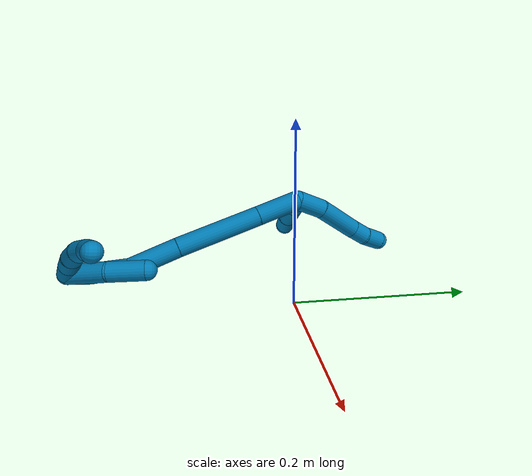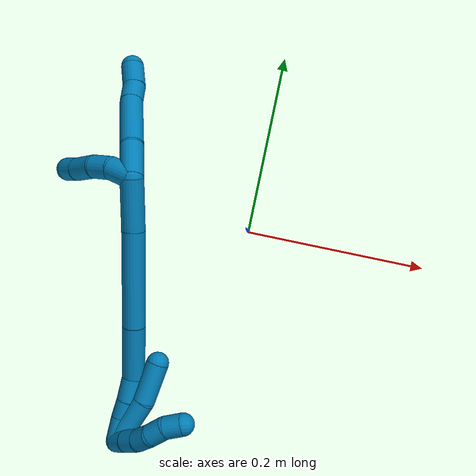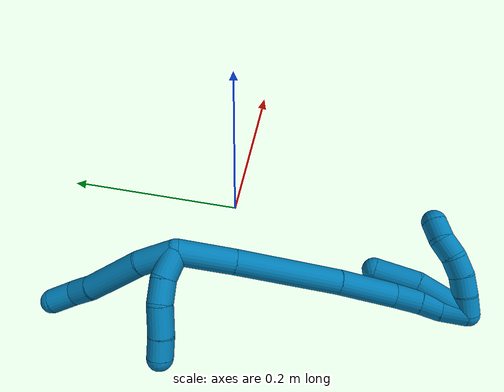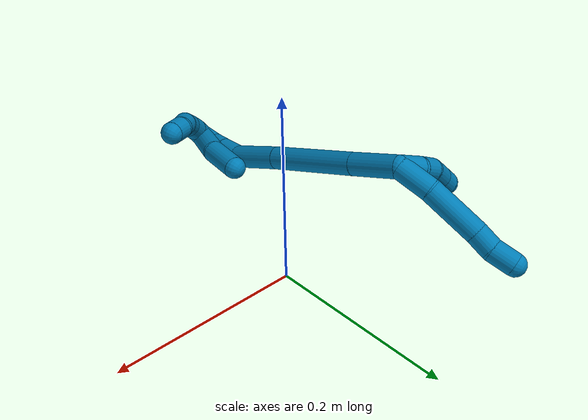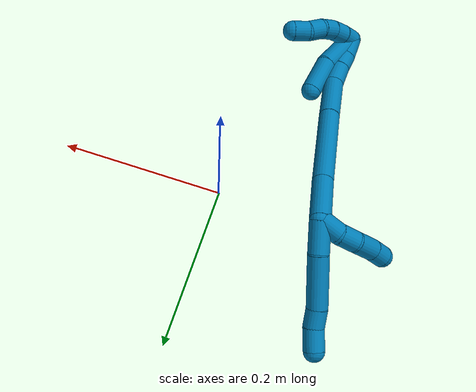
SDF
<sdf version="1.7">
 <world name="default">
  <model name="9">
   <static>0</static>
   <link name="9">
    <collision name="collision-cylinder-e_1_2_8">
     <pose>0.00286 -0.003937 -0.018699 2.9341 0.148581 1.2412</pose>
     <geometry><cylinder><radius>0.0125</radius><length>0.038644</length></cylinder></geometry>
     <surface>
      <friction><ode><mu>1.16</mu><mu2>1.16</mu2><slip1>0</slip1><slip2>0</slip2></ode></friction>
      <contact><ode><kp>1e+06</kp><kd>1</kd><max_vel>0</max_vel><min_depth>0.001</min_depth></ode></contact>
     </surface>
    </collision>
    <visual name="visual-cylinder-e_1_2_8">
     <pose>0.00286 -0.003937 -0.018699 2.9341 0.148581 1.2412</pose>
     <geometry><cylinder><radius>0.0125</radius><length>0.038644</length></cylinder></geometry>
     <material><ambient>0 0.490196 0.709804 1</ambient></material>
    </visual>
    <collision name="collision-cylinder-e_2_8_9">
     <pose>0.012709 -0.019048 -0.065464 2.76267 0.227326 1.0739</pose>
     <geometry><cylinder><radius>0.0125</radius><length>0.062013</length></cylinder></geometry>
     <surface>
      <friction><ode><mu>1.16</mu><mu2>1.16</mu2><slip1>0</slip1><slip2>0</slip2></ode></friction>
      <contact><ode><kp>1e+06</kp><kd>1</kd><max_vel>0</max_vel><min_depth>0.001</min_depth></ode></contact>
     </surface>
    </collision>
    <visual name="visual-cylinder-e_2_8_9">
     <pose>0.012709 -0.019048 -0.065464 2.76267 0.227326 1.0739</pose>
     <geometry><cylinder><radius>0.0125</radius><length>0.062013</length></cylinder></geometry>
     <material><ambient>0 0.490196 0.709804 1</ambient></material>
    </visual>
    <collision name="collision-cylinder-e_3_9_10">
     <pose>0.023365 -0.032944 -0.103829 2.88332 0.331654 1.82183</pose>
     <geometry><cylinder><radius>0.0125</radius><length>0.022534</length></cylinder></geometry>
     <surface>
      <friction><ode><mu>1.16</mu><mu2>1.16</mu2><slip1>0</slip1><slip2>0</slip2></ode></friction>
      <contact><ode><kp>1e+06</kp><kd>1</kd><max_vel>0</max_vel><min_depth>0.001</min_depth></ode></contact>
     </surface>
    </collision>
    <visual name="visual-cylinder-e_3_9_10">
     <pose>0.023365 -0.032944 -0.103829 2.88332 0.331654 1.82183</pose>
     <geometry><cylinder><radius>0.0125</radius><length>0.022534</length></cylinder></geometry>
     <material><ambient>0 0.490196 0.709804 1</ambient></material>
    </visual>
    <collision name="collision-cylinder-e_4_10_6">
     <pose>0.028233 -0.038914 -0.127078 2.89573 0.089563 0.69587</pose>
     <geometry><cylinder><radius>0.0125</radius><length>0.02681</length></cylinder></geometry>
     <surface>
      <friction><ode><mu>1.16</mu><mu2>1.16</mu2><slip1>0</slip1><slip2>0</slip2></ode></friction>
      <contact><ode><kp>1e+06</kp><kd>1</kd><max_vel>0</max_vel><min_depth>0.001</min_depth></ode></contact>
     </surface>
    </collision>
    <visual name="visual-cylinder-e_4_10_6">
     <pose>0.028233 -0.038914 -0.127078 2.89573 0.089563 0.69587</pose>
     <geometry><cylinder><radius>0.0125</radius><length>0.02681</length></cylinder></geometry>
     <material><ambient>0 0.490196 0.709804 1</ambient></material>
    </visual>
    <collision name="collision-cylinder-e_1_2_11">
     <pose>-0.006217 -0.010048 -0.006543 2.14799 -0.478379 -0.845364</pose>
     <geometry><cylinder><radius>0.0125</radius><length>0.027013</length></cylinder></geometry>
     <surface>
      <friction><ode><mu>1.16</mu><mu2>1.16</mu2><slip1>0</slip1><slip2>0</slip2></ode></friction>
      <contact><ode><kp>1e+06</kp><kd>1</kd><max_vel>0</max_vel><min_depth>0.001</min_depth></ode></contact>
     </surface>
    </collision>
    <visual name="visual-cylinder-e_1_2_11">
     <pose>-0.006217 -0.010048 -0.006543 2.14799 -0.478379 -0.845364</pose>
     <geometry><cylinder><radius>0.0125</radius><length>0.027013</length></cylinder></geometry>
     <material><ambient>0 0.490196 0.709804 1</ambient></material>
    </visual>
    <collision name="collision-cylinder-e_2_11_12">
     <pose>-0.016713 -0.030397 -0.015808 1.82915 -0.381802 -0.491759</pose>
     <geometry><cylinder><radius>0.0125</radius><length>0.022963</length></cylinder></geometry>
     <surface>
      <friction><ode><mu>1.16</mu><mu2>1.16</mu2><slip1>0</slip1><slip2>0</slip2></ode></friction>
      <contact><ode><kp>1e+06</kp><kd>1</kd><max_vel>0</max_vel><min_depth>0.001</min_depth></ode></contact>
     </surface>
    </collision>
    <visual name="visual-cylinder-e_2_11_12">
     <pose>-0.016713 -0.030397 -0.015808 1.82915 -0.381802 -0.491759</pose>
     <geometry><cylinder><radius>0.0125</radius><length>0.022963</length></cylinder></geometry>
     <material><ambient>0 0.490196 0.709804 1</ambient></material>
    </visual>
    <collision name="collision-cylinder-e_3_12_13">
     <pose>-0.022913 -0.055314 -0.020233 1.68677 -0.129878 -0.145833</pose>
     <geometry><cylinder><radius>0.0125</radius><length>0.02968</length></cylinder></geometry>
     <surface>
      <friction><ode><mu>1.16</mu><mu2>1.16</mu2><slip1>0</slip1><slip2>0</slip2></ode></friction>
      <contact><ode><kp>1e+06</kp><kd>1</kd><max_vel>0</max_vel><min_depth>0.001</min_depth></ode></contact>
     </surface>
    </collision>
    <visual name="visual-cylinder-e_3_12_13">
     <pose>-0.022913 -0.055314 -0.020233 1.68677 -0.129878 -0.145833</pose>
     <geometry><cylinder><radius>0.0125</radius><length>0.02968</length></cylinder></geometry>
     <material><ambient>0 0.490196 0.709804 1</ambient></material>
    </visual>
    <collision name="collision-cylinder-e_4_13_5">
     <pose>-0.025786 -0.079816 -0.024134 1.78966 -0.093676 -0.116755</pose>
     <geometry><cylinder><radius>0.0125</radius><length>0.020344</length></cylinder></geometry>
     <surface>
      <friction><ode><mu>1.16</mu><mu2>1.16</mu2><slip1>0</slip1><slip2>0</slip2></ode></friction>
      <contact><ode><kp>1e+06</kp><kd>1</kd><max_vel>0</max_vel><min_depth>0.001</min_depth></ode></contact>
     </surface>
    </collision>
    <visual name="visual-cylinder-e_4_13_5">
     <pose>-0.025786 -0.079816 -0.024134 1.78966 -0.093676 -0.116755</pose>
     <geometry><cylinder><radius>0.0125</radius><length>0.020344</length></cylinder></geometry>
     <material><ambient>0 0.490196 0.709804 1</ambient></material>
    </visual>
    <collision name="collision-cylinder-e_1_2_14">
     <pose>0.006421 -0.010565 0.025433 0.393702 0.229078 0.045879</pose>
     <geometry><cylinder><radius>0.0125</radius><length>0.056557</length></cylinder></geometry>
     <surface>
      <friction><ode><mu>1.16</mu><mu2>1.16</mu2><slip1>0</slip1><slip2>0</slip2></ode></friction>
      <contact><ode><kp>1e+06</kp><kd>1</kd><max_vel>0</max_vel><min_depth>0.001</min_depth></ode></contact>
     </surface>
    </collision>
    <visual name="visual-cylinder-e_1_2_14">
     <pose>0.006421 -0.010565 0.025433 0.393702 0.229078 0.045879</pose>
     <geometry><cylinder><radius>0.0125</radius><length>0.056557</length></cylinder></geometry>
     <material><ambient>0 0.490196 0.709804 1</ambient></material>
    </visual>
    <collision name="collision-cylinder-e_2_14_15">
     <pose>0.024019 -0.042024 0.098949 0.409943 0.210031 0.043818</pose>
     <geometry><cylinder><radius>0.0125</radius><length>0.10721</length></cylinder></geometry>
     <surface>
      <friction><ode><mu>1.16</mu><mu2>1.16</mu2><slip1>0</slip1><slip2>0</slip2></ode></friction>
      <contact><ode><kp>1e+06</kp><kd>1</kd><max_vel>0</max_vel><min_depth>0.001</min_depth></ode></contact>
     </surface>
    </collision>
    <visual name="visual-cylinder-e_2_14_15">
     <pose>0.024019 -0.042024 0.098949 0.409943 0.210031 0.043818</pose>
     <geometry><cylinder><radius>0.0125</radius><length>0.10721</length></cylinder></geometry>
     <material><ambient>0 0.490196 0.709804 1</ambient></material>
    </visual>
    <collision name="collision-cylinder-e_3_15_16">
     <pose>0.041995 -0.076279 0.174157 0.457646 0.221216 0.051721</pose>
     <geometry><cylinder><radius>0.0125</radius><length>0.061982</length></cylinder></geometry>
     <surface>
      <friction><ode><mu>1.16</mu><mu2>1.16</mu2><slip1>0</slip1><slip2>0</slip2></ode></friction>
      <contact><ode><kp>1e+06</kp><kd>1</kd><max_vel>0</max_vel><min_depth>0.001</min_depth></ode></contact>
     </surface>
    </collision>
    <visual name="visual-cylinder-e_3_15_16">
     <pose>0.041995 -0.076279 0.174157 0.457646 0.221216 0.051721</pose>
     <geometry><cylinder><radius>0.0125</radius><length>0.061982</length></cylinder></geometry>
     <material><ambient>0 0.490196 0.709804 1</ambient></material>
    </visual>
    <collision name="collision-cylinder-e_4_16_17">
     <pose>0.047839 -0.09466 0.213881 0.37929 -0.070358 -0.013511</pose>
     <geometry><cylinder><radius>0.0125</radius><length>0.027194</length></cylinder></geometry>
     <surface>
      <friction><ode><mu>1.16</mu><mu2>1.16</mu2><slip1>0</slip1><slip2>0</slip2></ode></friction>
      <contact><ode><kp>1e+06</kp><kd>1</kd><max_vel>0</max_vel><min_depth>0.001</min_depth></ode></contact>
     </surface>
    </collision>
    <visual name="visual-cylinder-e_4_16_17">
     <pose>0.047839 -0.09466 0.213881 0.37929 -0.070358 -0.013511</pose>
     <geometry><cylinder><radius>0.0125</radius><length>0.027194</length></cylinder></geometry>
     <material><ambient>0 0.490196 0.709804 1</ambient></material>
    </visual>
    <collision name="collision-cylinder-e_5_17_18">
     <pose>0.045883 -0.104282 0.235781 0.45928 -0.096169 -0.022497</pose>
     <geometry><cylinder><radius>0.0125</radius><length>0.020849</length></cylinder></geometry>
     <surface>
      <friction><ode><mu>1.16</mu><mu2>1.16</mu2><slip1>0</slip1><slip2>0</slip2></ode></friction>
      <contact><ode><kp>1e+06</kp><kd>1</kd><max_vel>0</max_vel><min_depth>0.001</min_depth></ode></contact>
     </surface>
    </collision>
    <visual name="visual-cylinder-e_5_17_18">
     <pose>0.045883 -0.104282 0.235781 0.45928 -0.096169 -0.022497</pose>
     <geometry><cylinder><radius>0.0125</radius><length>0.020849</length></cylinder></geometry>
     <material><ambient>0 0.490196 0.709804 1</ambient></material>
    </visual>
    <collision name="collision-cylinder-e_6_18_1">
     <pose>0.04306 -0.11232 0.257595 0.268133 -0.139474 -0.018842</pose>
     <geometry><cylinder><radius>0.0125</radius><length>0.026207</length></cylinder></geometry>
     <surface>
      <friction><ode><mu>1.16</mu><mu2>1.16</mu2><slip1>0</slip1><slip2>0</slip2></ode></friction>
      <contact><ode><kp>1e+06</kp><kd>1</kd><max_vel>0</max_vel><min_depth>0.001</min_depth></ode></contact>
     </surface>
    </collision>
    <visual name="visual-cylinder-e_6_18_1">
     <pose>0.04306 -0.11232 0.257595 0.268133 -0.139474 -0.018842</pose>
     <geometry><cylinder><radius>0.0125</radius><length>0.026207</length></cylinder></geometry>
     <material><ambient>0 0.490196 0.709804 1</ambient></material>
    </visual>
    <collision name="collision-cylinder-e_1_1_19">
     <pose>0.041566 -0.105763 0.270023 -1.57927 0.032768 -0.033047</pose>
     <geometry><cylinder><radius>0.0125</radius><length>0.02</length></cylinder></geometry>
     <surface>
      <friction><ode><mu>1.16</mu><mu2>1.16</mu2><slip1>0</slip1><slip2>0</slip2></ode></friction>
      <contact><ode><kp>1e+06</kp><kd>1</kd><max_vel>0</max_vel><min_depth>0.001</min_depth></ode></contact>
     </surface>
    </collision>
    <visual name="visual-cylinder-e_1_1_19">
     <pose>0.041566 -0.105763 0.270023 -1.57927 0.032768 -0.033047</pose>
     <geometry><cylinder><radius>0.0125</radius><length>0.02</length></cylinder></geometry>
     <material><ambient>0 0.490196 0.709804 1</ambient></material>
    </visual>
    <collision name="collision-cylinder-e_2_19_20">
     <pose>0.043252 -0.085874 0.269448 -1.62033 0.136248 -0.143146</pose>
     <geometry><cylinder><radius>0.0125</radius><length>0.02</length></cylinder></geometry>
     <surface>
      <friction><ode><mu>1.16</mu><mu2>1.16</mu2><slip1>0</slip1><slip2>0</slip2></ode></friction>
      <contact><ode><kp>1e+06</kp><kd>1</kd><max_vel>0</max_vel><min_depth>0.001</min_depth></ode></contact>
     </surface>
    </collision>
    <visual name="visual-cylinder-e_2_19_20">
     <pose>0.043252 -0.085874 0.269448 -1.62033 0.136248 -0.143146</pose>
     <geometry><cylinder><radius>0.0125</radius><length>0.02</length></cylinder></geometry>
     <material><ambient>0 0.490196 0.709804 1</ambient></material>
    </visual>
    <collision name="collision-cylinder-e_3_20_21">
     <pose>0.046311 -0.066457 0.266418 -1.83143 0.170923 -0.222108</pose>
     <geometry><cylinder><radius>0.0125</radius><length>0.02</length></cylinder></geometry>
     <surface>
      <friction><ode><mu>1.16</mu><mu2>1.16</mu2><slip1>0</slip1><slip2>0</slip2></ode></friction>
      <contact><ode><kp>1e+06</kp><kd>1</kd><max_vel>0</max_vel><min_depth>0.001</min_depth></ode></contact>
     </surface>
    </collision>
    <visual name="visual-cylinder-e_3_20_21">
     <pose>0.046311 -0.066457 0.266418 -1.83143 0.170923 -0.222108</pose>
     <geometry><cylinder><radius>0.0125</radius><length>0.02</length></cylinder></geometry>
     <material><ambient>0 0.490196 0.709804 1</ambient></material>
    </visual>
    <collision name="collision-cylinder-e_4_21_22">
     <pose>0.05228 -0.048764 0.260005 -2.01336 0.441018 -0.680969</pose>
     <geometry><cylinder><radius>0.0125</radius><length>0.02</length></cylinder></geometry>
     <surface>
      <friction><ode><mu>1.16</mu><mu2>1.16</mu2><slip1>0</slip1><slip2>0</slip2></ode></friction>
      <contact><ode><kp>1e+06</kp><kd>1</kd><max_vel>0</max_vel><min_depth>0.001</min_depth></ode></contact>
     </surface>
    </collision>
    <visual name="visual-cylinder-e_4_21_22">
     <pose>0.05228 -0.048764 0.260005 -2.01336 0.441018 -0.680969</pose>
     <geometry><cylinder><radius>0.0125</radius><length>0.02</length></cylinder></geometry>
     <material><ambient>0 0.490196 0.709804 1</ambient></material>
    </visual>
    <collision name="collision-cylinder-e_5_22_4">
     <pose>0.062774 -0.032874 0.254836 -1.7373 0.671921 -0.782953</pose>
     <geometry><cylinder><radius>0.0125</radius><length>0.02</length></cylinder></geometry>
     <surface>
      <friction><ode><mu>1.16</mu><mu2>1.16</mu2><slip1>0</slip1><slip2>0</slip2></ode></friction>
      <contact><ode><kp>1e+06</kp><kd>1</kd><max_vel>0</max_vel><min_depth>0.001</min_depth></ode></contact>
     </surface>
    </collision>
    <visual name="visual-cylinder-e_5_22_4">
     <pose>0.062774 -0.032874 0.254836 -1.7373 0.671921 -0.782953</pose>
     <geometry><cylinder><radius>0.0125</radius><length>0.02</length></cylinder></geometry>
     <material><ambient>0 0.490196 0.709804 1</ambient></material>
    </visual>
    <collision name="collision-cylinder-e_1_1_23">
     <pose>0.049234 -0.100017 0.249381 -2.49206 0.298056 -0.838937</pose>
     <geometry><cylinder><radius>0.0125</radius><length>0.054454</length></cylinder></geometry>
     <surface>
      <friction><ode><mu>1.16</mu><mu2>1.16</mu2><slip1>0</slip1><slip2>0</slip2></ode></friction>
      <contact><ode><kp>1e+06</kp><kd>1</kd><max_vel>0</max_vel><min_depth>0.001</min_depth></ode></contact>
     </surface>
    </collision>
    <visual name="visual-cylinder-e_1_1_23">
     <pose>0.049234 -0.100017 0.249381 -2.49206 0.298056 -0.838937</pose>
     <geometry><cylinder><radius>0.0125</radius><length>0.054454</length></cylinder></geometry>
     <material><ambient>0 0.490196 0.709804 1</ambient></material>
    </visual>
    <collision name="collision-cylinder-e_2_23_3">
     <pose>0.061554 -0.075344 0.208157 -2.73066 0.191068 -0.861954</pose>
     <geometry><cylinder><radius>0.0125</radius><length>0.045546</length></cylinder></geometry>
     <surface>
      <friction><ode><mu>1.16</mu><mu2>1.16</mu2><slip1>0</slip1><slip2>0</slip2></ode></friction>
      <contact><ode><kp>1e+06</kp><kd>1</kd><max_vel>0</max_vel><min_depth>0.001</min_depth></ode></contact>
     </surface>
    </collision>
    <visual name="visual-cylinder-e_2_23_3">
     <pose>0.061554 -0.075344 0.208157 -2.73066 0.191068 -0.861954</pose>
     <geometry><cylinder><radius>0.0125</radius><length>0.045546</length></cylinder></geometry>
     <material><ambient>0 0.490196 0.709804 1</ambient></material>
    </visual>
    <collision name="collision-sphere-3">
     <pose>0.065879 -0.066412 0.18766 0 -0 0</pose>
     <geometry><sphere><radius>0.0125</radius></sphere></geometry>
     <surface>
      <friction><ode><mu>1.16</mu><mu2>1.16</mu2><slip1>0</slip1><slip2>0</slip2></ode></friction>
      <contact><ode><kp>1e+06</kp><kd>1</kd><max_vel>0</max_vel><min_depth>0.001</min_depth></ode></contact>
     </surface>
    </collision>
    <visual name="visual-sphere-3">
     <pose>0.065879 -0.066412 0.18766 0 -0 0</pose>
     <geometry><sphere><radius>0.0125</radius></sphere></geometry>
     <material><ambient>0 0.490196 0.709804 1</ambient></material>
    </visual>
    <collision name="collision-sphere-23">
     <pose>0.057229 -0.084275 0.228654 0 -0 0</pose>
     <geometry><sphere><radius>0.0125</radius></sphere></geometry>
     <surface>
      <friction><ode><mu>1.16</mu><mu2>1.16</mu2><slip1>0</slip1><slip2>0</slip2></ode></friction>
      <contact><ode><kp>1e+06</kp><kd>1</kd><max_vel>0</max_vel><min_depth>0.001</min_depth></ode></contact>
     </surface>
    </collision>
    <visual name="visual-sphere-23">
     <pose>0.057229 -0.084275 0.228654 0 -0 0</pose>
     <geometry><sphere><radius>0.0125</radius></sphere></geometry>
     <material><ambient>0 0.490196 0.709804 1</ambient></material>
    </visual>
    <collision name="collision-sphere-4">
     <pose>0.068999 -0.025156 0.253538 0 -0 0</pose>
     <geometry><sphere><radius>0.0125</radius></sphere></geometry>
     <surface>
      <friction><ode><mu>1.16</mu><mu2>1.16</mu2><slip1>0</slip1><slip2>0</slip2></ode></friction>
      <contact><ode><kp>1e+06</kp><kd>1</kd><max_vel>0</max_vel><min_depth>0.001</min_depth></ode></contact>
     </surface>
    </collision>
    <visual name="visual-sphere-4">
     <pose>0.068999 -0.025156 0.253538 0 -0 0</pose>
     <geometry><sphere><radius>0.0125</radius></sphere></geometry>
     <material><ambient>0 0.490196 0.709804 1</ambient></material>
    </visual>
    <collision name="collision-sphere-22">
     <pose>0.056549 -0.040592 0.256133 0 -0 0</pose>
     <geometry><sphere><radius>0.0125</radius></sphere></geometry>
     <surface>
      <friction><ode><mu>1.16</mu><mu2>1.16</mu2><slip1>0</slip1><slip2>0</slip2></ode></friction>
      <contact><ode><kp>1e+06</kp><kd>1</kd><max_vel>0</max_vel><min_depth>0.001</min_depth></ode></contact>
     </surface>
    </collision>
    <visual name="visual-sphere-22">
     <pose>0.056549 -0.040592 0.256133 0 -0 0</pose>
     <geometry><sphere><radius>0.0125</radius></sphere></geometry>
     <material><ambient>0 0.490196 0.709804 1</ambient></material>
    </visual>
    <collision name="collision-sphere-21">
     <pose>0.048012 -0.056936 0.263878 0 -0 0</pose>
     <geometry><sphere><radius>0.0125</radius></sphere></geometry>
     <surface>
      <friction><ode><mu>1.16</mu><mu2>1.16</mu2><slip1>0</slip1><slip2>0</slip2></ode></friction>
      <contact><ode><kp>1e+06</kp><kd>1</kd><max_vel>0</max_vel><min_depth>0.001</min_depth></ode></contact>
     </surface>
    </collision>
    <visual name="visual-sphere-21">
     <pose>0.048012 -0.056936 0.263878 0 -0 0</pose>
     <geometry><sphere><radius>0.0125</radius></sphere></geometry>
     <material><ambient>0 0.490196 0.709804 1</ambient></material>
    </visual>
    <collision name="collision-sphere-20">
     <pose>0.04461 -0.075979 0.268957 0 -0 0</pose>
     <geometry><sphere><radius>0.0125</radius></sphere></geometry>
     <surface>
      <friction><ode><mu>1.16</mu><mu2>1.16</mu2><slip1>0</slip1><slip2>0</slip2></ode></friction>
      <contact><ode><kp>1e+06</kp><kd>1</kd><max_vel>0</max_vel><min_depth>0.001</min_depth></ode></contact>
     </surface>
    </collision>
    <visual name="visual-sphere-20">
     <pose>0.04461 -0.075979 0.268957 0 -0 0</pose>
     <geometry><sphere><radius>0.0125</radius></sphere></geometry>
     <material><ambient>0 0.490196 0.709804 1</ambient></material>
    </visual>
    <collision name="collision-sphere-11">
     <pose>-0.012435 -0.020095 -0.013085 0 -0 0</pose>
     <geometry><sphere><radius>0.0125</radius></sphere></geometry>
     <surface>
      <friction><ode><mu>1.16</mu><mu2>1.16</mu2><slip1>0</slip1><slip2>0</slip2></ode></friction>
      <contact><ode><kp>1e+06</kp><kd>1</kd><max_vel>0</max_vel><min_depth>0.001</min_depth></ode></contact>
     </surface>
    </collision>
    <visual name="visual-sphere-11">
     <pose>-0.012435 -0.020095 -0.013085 0 -0 0</pose>
     <geometry><sphere><radius>0.0125</radius></sphere></geometry>
     <material><ambient>0 0.490196 0.709804 1</ambient></material>
    </visual>
    <collision name="collision-sphere-6">
     <pose>0.029432 -0.042164 -0.140028 0 -0 0</pose>
     <geometry><sphere><radius>0.0125</radius></sphere></geometry>
     <surface>
      <friction><ode><mu>1.16</mu><mu2>1.16</mu2><slip1>0</slip1><slip2>0</slip2></ode></friction>
      <contact><ode><kp>1e+06</kp><kd>1</kd><max_vel>0</max_vel><min_depth>0.001</min_depth></ode></contact>
     </surface>
    </collision>
    <visual name="visual-sphere-6">
     <pose>0.029432 -0.042164 -0.140028 0 -0 0</pose>
     <geometry><sphere><radius>0.0125</radius></sphere></geometry>
     <material><ambient>0 0.490196 0.709804 1</ambient></material>
    </visual>
    <collision name="collision-sphere-10">
     <pose>0.027034 -0.035665 -0.114129 0 -0 0</pose>
     <geometry><sphere><radius>0.0125</radius></sphere></geometry>
     <surface>
      <friction><ode><mu>1.16</mu><mu2>1.16</mu2><slip1>0</slip1><slip2>0</slip2></ode></friction>
      <contact><ode><kp>1e+06</kp><kd>1</kd><max_vel>0</max_vel><min_depth>0.001</min_depth></ode></contact>
     </surface>
    </collision>
    <visual name="visual-sphere-10">
     <pose>0.027034 -0.035665 -0.114129 0 -0 0</pose>
     <geometry><sphere><radius>0.0125</radius></sphere></geometry>
     <material><ambient>0 0.490196 0.709804 1</ambient></material>
    </visual>
    <collision name="collision-sphere-9">
     <pose>0.019697 -0.030223 -0.09353 0 -0 0</pose>
     <geometry><sphere><radius>0.0125</radius></sphere></geometry>
     <surface>
      <friction><ode><mu>1.16</mu><mu2>1.16</mu2><slip1>0</slip1><slip2>0</slip2></ode></friction>
      <contact><ode><kp>1e+06</kp><kd>1</kd><max_vel>0</max_vel><min_depth>0.001</min_depth></ode></contact>
     </surface>
    </collision>
    <visual name="visual-sphere-9">
     <pose>0.019697 -0.030223 -0.09353 0 -0 0</pose>
     <geometry><sphere><radius>0.0125</radius></sphere></geometry>
     <material><ambient>0 0.490196 0.709804 1</ambient></material>
    </visual>
    <collision name="collision-sphere-2">
     <geometry><sphere><radius>0.0125</radius></sphere></geometry>
     <surface>
      <friction><ode><mu>1.16</mu><mu2>1.16</mu2><slip1>0</slip1><slip2>0</slip2></ode></friction>
      <contact><ode><kp>1e+06</kp><kd>1</kd><max_vel>0</max_vel><min_depth>0.001</min_depth></ode></contact>
     </surface>
    </collision>
    <visual name="visual-sphere-2">
     <geometry><sphere><radius>0.0125</radius></sphere></geometry>
     <material><ambient>0 0.490196 0.709804 1</ambient></material>
    </visual>
    <collision name="collision-sphere-19">
     <pose>0.041893 -0.095769 0.269938 0 -0 0</pose>
     <geometry><sphere><radius>0.0125</radius></sphere></geometry>
     <surface>
      <friction><ode><mu>1.16</mu><mu2>1.16</mu2><slip1>0</slip1><slip2>0</slip2></ode></friction>
      <contact><ode><kp>1e+06</kp><kd>1</kd><max_vel>0</max_vel><min_depth>0.001</min_depth></ode></contact>
     </surface>
    </collision>
    <visual name="visual-sphere-19">
     <pose>0.041893 -0.095769 0.269938 0 -0 0</pose>
     <geometry><sphere><radius>0.0125</radius></sphere></geometry>
     <material><ambient>0 0.490196 0.709804 1</ambient></material>
    </visual>
    <collision name="collision-sphere-8">
     <pose>0.005721 -0.007873 -0.037398 0 -0 0</pose>
     <geometry><sphere><radius>0.0125</radius></sphere></geometry>
     <surface>
      <friction><ode><mu>1.16</mu><mu2>1.16</mu2><slip1>0</slip1><slip2>0</slip2></ode></friction>
      <contact><ode><kp>1e+06</kp><kd>1</kd><max_vel>0</max_vel><min_depth>0.001</min_depth></ode></contact>
     </surface>
    </collision>
    <visual name="visual-sphere-8">
     <pose>0.005721 -0.007873 -0.037398 0 -0 0</pose>
     <geometry><sphere><radius>0.0125</radius></sphere></geometry>
     <material><ambient>0 0.490196 0.709804 1</ambient></material>
    </visual>
    <collision name="collision-sphere-12">
     <pose>-0.020991 -0.040698 -0.01853 0 -0 0</pose>
     <geometry><sphere><radius>0.0125</radius></sphere></geometry>
     <surface>
      <friction><ode><mu>1.16</mu><mu2>1.16</mu2><slip1>0</slip1><slip2>0</slip2></ode></friction>
      <contact><ode><kp>1e+06</kp><kd>1</kd><max_vel>0</max_vel><min_depth>0.001</min_depth></ode></contact>
     </surface>
    </collision>
    <visual name="visual-sphere-12">
     <pose>-0.020991 -0.040698 -0.01853 0 -0 0</pose>
     <geometry><sphere><radius>0.0125</radius></sphere></geometry>
     <material><ambient>0 0.490196 0.709804 1</ambient></material>
    </visual>
    <collision name="collision-sphere-13">
     <pose>-0.024835 -0.06993 -0.021935 0 -0 0</pose>
     <geometry><sphere><radius>0.0125</radius></sphere></geometry>
     <surface>
      <friction><ode><mu>1.16</mu><mu2>1.16</mu2><slip1>0</slip1><slip2>0</slip2></ode></friction>
      <contact><ode><kp>1e+06</kp><kd>1</kd><max_vel>0</max_vel><min_depth>0.001</min_depth></ode></contact>
     </surface>
    </collision>
    <visual name="visual-sphere-13">
     <pose>-0.024835 -0.06993 -0.021935 0 -0 0</pose>
     <geometry><sphere><radius>0.0125</radius></sphere></geometry>
     <material><ambient>0 0.490196 0.709804 1</ambient></material>
    </visual>
    <collision name="collision-sphere-5">
     <pose>-0.026738 -0.089702 -0.026333 0 -0 0</pose>
     <geometry><sphere><radius>0.0125</radius></sphere></geometry>
     <surface>
      <friction><ode><mu>1.16</mu><mu2>1.16</mu2><slip1>0</slip1><slip2>0</slip2></ode></friction>
      <contact><ode><kp>1e+06</kp><kd>1</kd><max_vel>0</max_vel><min_depth>0.001</min_depth></ode></contact>
     </surface>
    </collision>
    <visual name="visual-sphere-5">
     <pose>-0.026738 -0.089702 -0.026333 0 -0 0</pose>
     <geometry><sphere><radius>0.0125</radius></sphere></geometry>
     <material><ambient>0 0.490196 0.709804 1</ambient></material>
    </visual>
    <collision name="collision-sphere-14">
     <pose>0.012843 -0.021129 0.050866 0 -0 0</pose>
     <geometry><sphere><radius>0.0125</radius></sphere></geometry>
     <surface>
      <friction><ode><mu>1.16</mu><mu2>1.16</mu2><slip1>0</slip1><slip2>0</slip2></ode></friction>
      <contact><ode><kp>1e+06</kp><kd>1</kd><max_vel>0</max_vel><min_depth>0.001</min_depth></ode></contact>
     </surface>
    </collision>
    <visual name="visual-sphere-14">
     <pose>0.012843 -0.021129 0.050866 0 -0 0</pose>
     <geometry><sphere><radius>0.0125</radius></sphere></geometry>
     <material><ambient>0 0.490196 0.709804 1</ambient></material>
    </visual>
    <collision name="collision-sphere-15">
     <pose>0.035195 -0.06292 0.147032 0 -0 0</pose>
     <geometry><sphere><radius>0.0125</radius></sphere></geometry>
     <surface>
      <friction><ode><mu>1.16</mu><mu2>1.16</mu2><slip1>0</slip1><slip2>0</slip2></ode></friction>
      <contact><ode><kp>1e+06</kp><kd>1</kd><max_vel>0</max_vel><min_depth>0.001</min_depth></ode></contact>
     </surface>
    </collision>
    <visual name="visual-sphere-15">
     <pose>0.035195 -0.06292 0.147032 0 -0 0</pose>
     <geometry><sphere><radius>0.0125</radius></sphere></geometry>
     <material><ambient>0 0.490196 0.709804 1</ambient></material>
    </visual>
    <collision name="collision-sphere-16">
     <pose>0.048795 -0.089638 0.201281 0 -0 0</pose>
     <geometry><sphere><radius>0.0125</radius></sphere></geometry>
     <surface>
      <friction><ode><mu>1.16</mu><mu2>1.16</mu2><slip1>0</slip1><slip2>0</slip2></ode></friction>
      <contact><ode><kp>1e+06</kp><kd>1</kd><max_vel>0</max_vel><min_depth>0.001</min_depth></ode></contact>
     </surface>
    </collision>
    <visual name="visual-sphere-16">
     <pose>0.048795 -0.089638 0.201281 0 -0 0</pose>
     <geometry><sphere><radius>0.0125</radius></sphere></geometry>
     <material><ambient>0 0.490196 0.709804 1</ambient></material>
    </visual>
    <collision name="collision-sphere-17">
     <pose>0.046884 -0.099682 0.22648 0 -0 0</pose>
     <geometry><sphere><radius>0.0125</radius></sphere></geometry>
     <surface>
      <friction><ode><mu>1.16</mu><mu2>1.16</mu2><slip1>0</slip1><slip2>0</slip2></ode></friction>
      <contact><ode><kp>1e+06</kp><kd>1</kd><max_vel>0</max_vel><min_depth>0.001</min_depth></ode></contact>
     </surface>
    </collision>
    <visual name="visual-sphere-17">
     <pose>0.046884 -0.099682 0.22648 0 -0 0</pose>
     <geometry><sphere><radius>0.0125</radius></sphere></geometry>
     <material><ambient>0 0.490196 0.709804 1</ambient></material>
    </visual>
    <collision name="collision-sphere-18">
     <pose>0.044882 -0.108882 0.245082 0 -0 0</pose>
     <geometry><sphere><radius>0.0125</radius></sphere></geometry>
     <surface>
      <friction><ode><mu>1.16</mu><mu2>1.16</mu2><slip1>0</slip1><slip2>0</slip2></ode></friction>
      <contact><ode><kp>1e+06</kp><kd>1</kd><max_vel>0</max_vel><min_depth>0.001</min_depth></ode></contact>
     </surface>
    </collision>
    <visual name="visual-sphere-18">
     <pose>0.044882 -0.108882 0.245082 0 -0 0</pose>
     <geometry><sphere><radius>0.0125</radius></sphere></geometry>
     <material><ambient>0 0.490196 0.709804 1</ambient></material>
    </visual>
    <collision name="collision-sphere-1">
     <pose>0.041238 -0.115758 0.270107 0 -0 0</pose>
     <geometry><sphere><radius>0.0125</radius></sphere></geometry>
     <surface>
      <friction><ode><mu>1.16</mu><mu2>1.16</mu2><slip1>0</slip1><slip2>0</slip2></ode></friction>
      <contact><ode><kp>1e+06</kp><kd>1</kd><max_vel>0</max_vel><min_depth>0.001</min_depth></ode></contact>
     </surface>
    </collision>
    <visual name="visual-sphere-1">
     <pose>0.041238 -0.115758 0.270107 0 -0 0</pose>
     <geometry><sphere><radius>0.0125</radius></sphere></geometry>
     <material><ambient>0 0.490196 0.709804 1</ambient></material>
    </visual>
    <inertial>
     <pose>0.026348 -0.054066 0.103519 0 -0 0</pose>
     <mass>0.75</mass>
     <inertia><ixx>0.000212</ixx><ixy>0</ixy><ixz>0</ixz><iyy>0.00012</iyy><iyz>0</iyz><izz>1.7e-05</izz></inertia>
    </inertial>
   </link>
   <pose>-0.127459 0.028801 0.085759 1.37346 0.676382 0.133415</pose>
  </model>
 </world>
</sdf>
